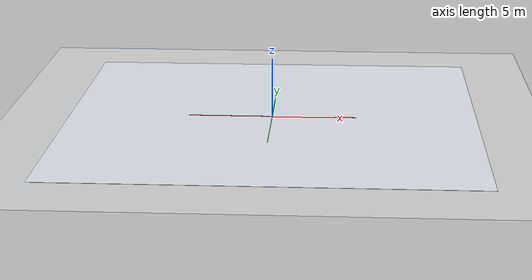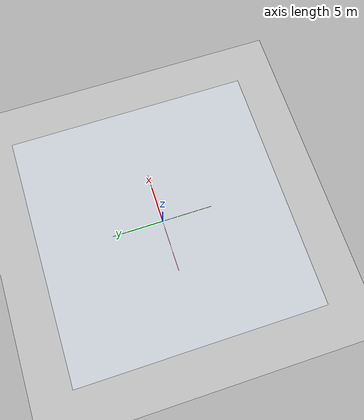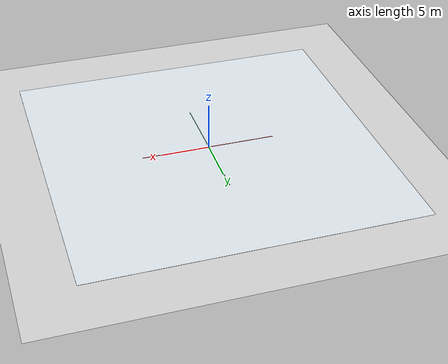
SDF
<?xml version="1.0" ?>
<sdf version="1.6">
  <world name="trust_up_target_pursuit">
    <scene>
      <ambient>0.95 0.96 0.98 1</ambient>
      <background>0.70 0.82 0.95 1</background>
      <shadows>false</shadows>
    </scene>
    <physics name="ode_physics" type="ode">
      <max_step_size>0.004</max_step_size>
      <real_time_factor>1.0</real_time_factor>
      <real_time_update_rate>250</real_time_update_rate>
    </physics>
    <gui fullscreen="0">
      <camera name="trust_up_overview">
        <pose>-15.0 -18.0 15.0 0.0 0.62 0.86</pose>
        <view_controller>orbit</view_controller>
      </camera>
    </gui>
    <include>
      <uri>model://sun</uri>
    </include>
    <light name="trust_up_key_light" type="directional">
      <pose>0 0 15 0.0 0.5 0.8</pose>
      <diffuse>1.0 1.0 1.0 1</diffuse>
      <specular>0.25 0.25 0.25 1</specular>
      <direction>-0.35 -0.45 -0.82</direction>
      <cast_shadows>false</cast_shadows>
    </light>
    <light name="trust_up_fill_light" type="point">
      <pose>0 -4 12 0 0 0</pose>
      <diffuse>0.75 0.82 1.0 1</diffuse>
      <specular>0.10 0.10 0.12 1</specular>
      <attenuation>
        <range>60</range>
        <constant>0.35</constant>
        <linear>0.01</linear>
        <quadratic>0.001</quadratic>
      </attenuation>
      <cast_shadows>false</cast_shadows>
    </light>
    <include>
      <uri>model://ground_plane</uri>
    </include>
    <model name="trust_up_visual_floor">
      <static>true</static>
      <pose>0 0 -0.015 0 0 0</pose>
      <link name="link">
        <visual name="floor_visual">
          <geometry>
            <box>
              <size>34 34 0.02</size>
            </box>
          </geometry>
          <material>
            <ambient>0.84 0.87 0.90 1</ambient>
            <diffuse>0.84 0.87 0.90 1</diffuse>
          </material>
        </visual>
      </link>
    </model>
    <model name="trust_up_x_axis">
      <static>true</static>
      <pose>0 0 0.035 0 0 0</pose>
      <link name="link">
        <visual name="visual">
          <geometry><box><size>14 0.035 0.035</size></box></geometry>
          <material><ambient>0.95 0.08 0.04 1</ambient><diffuse>0.95 0.08 0.04 1</diffuse></material>
        </visual>
      </link>
    </model>
    <model name="trust_up_y_axis">
      <static>true</static>
      <pose>0 0 0.045 0 0 1.57079632679</pose>
      <link name="link">
        <visual name="visual">
          <geometry><box><size>14 0.035 0.035</size></box></geometry>
          <material><ambient>0.05 0.65 0.18 1</ambient><diffuse>0.05 0.65 0.18 1</diffuse></material>
        </visual>
      </link>
    </model>
  </world>
</sdf>
